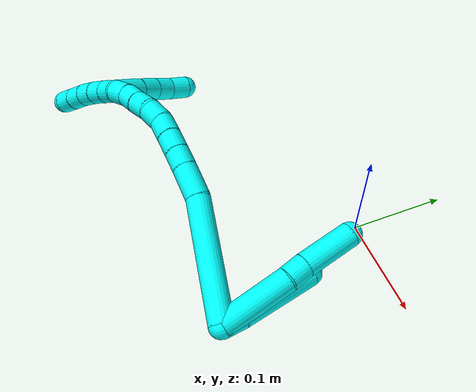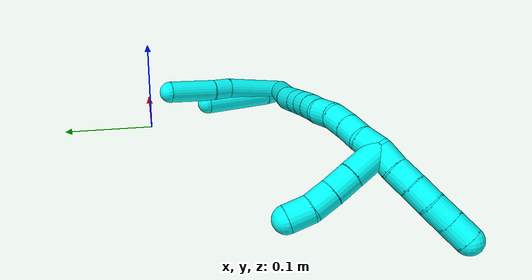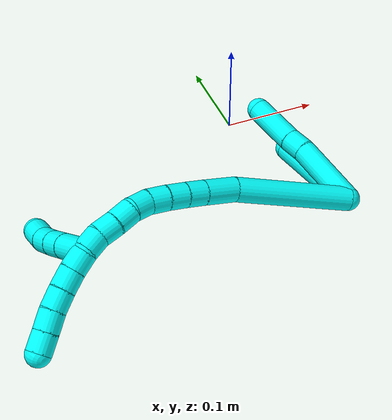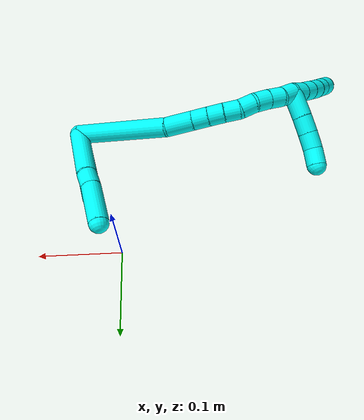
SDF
<sdf version="1.7">
 <world name="default">
  <model name="3">
   <static>0</static>
   <link name="3">
    <collision name="collision-cylinder-e_1_2_8">
     <pose>0.003814 0.009487 -0.035332 -2.87927 0.103867 -0.750698</pose>
     <geometry><cylinder><radius>0.0125</radius><length>0.073563</length></cylinder></geometry>
     <surface>
      <friction><ode><mu>1.16</mu><mu2>1.16</mu2><slip1>0</slip1><slip2>0</slip2></ode></friction>
      <contact><ode><kp>1e+06</kp><kd>1</kd><max_vel>0</max_vel><min_depth>0.001</min_depth></ode></contact>
     </surface>
    </collision>
    <visual name="visual-cylinder-e_1_2_8">
     <pose>0.003814 0.009487 -0.035332 -2.87927 0.103867 -0.750698</pose>
     <geometry><cylinder><radius>0.0125</radius><length>0.073563</length></cylinder></geometry>
     <material><ambient>0.003922 1 0.996078 1</ambient></material>
    </visual>
    <collision name="collision-cylinder-e_2_8_9">
     <pose>0.00738 0.020977 -0.081108 -2.95209 -0.023232 0.243261</pose>
     <geometry><cylinder><radius>0.0125</radius><length>0.021276</length></cylinder></geometry>
     <surface>
      <friction><ode><mu>1.16</mu><mu2>1.16</mu2><slip1>0</slip1><slip2>0</slip2></ode></friction>
      <contact><ode><kp>1e+06</kp><kd>1</kd><max_vel>0</max_vel><min_depth>0.001</min_depth></ode></contact>
     </surface>
    </collision>
    <visual name="visual-cylinder-e_2_8_9">
     <pose>0.00738 0.020977 -0.081108 -2.95209 -0.023232 0.243261</pose>
     <geometry><cylinder><radius>0.0125</radius><length>0.021276</length></cylinder></geometry>
     <material><ambient>0.003922 1 0.996078 1</ambient></material>
    </visual>
    <collision name="collision-cylinder-e_3_9_6">
     <pose>0.009113 0.0283 -0.118543 -2.94701 0.071872 -0.705863</pose>
     <geometry><cylinder><radius>0.0125</radius><length>0.055161</length></cylinder></geometry>
     <surface>
      <friction><ode><mu>1.16</mu><mu2>1.16</mu2><slip1>0</slip1><slip2>0</slip2></ode></friction>
      <contact><ode><kp>1e+06</kp><kd>1</kd><max_vel>0</max_vel><min_depth>0.001</min_depth></ode></contact>
     </surface>
    </collision>
    <visual name="visual-cylinder-e_3_9_6">
     <pose>0.009113 0.0283 -0.118543 -2.94701 0.071872 -0.705863</pose>
     <geometry><cylinder><radius>0.0125</radius><length>0.055161</length></cylinder></geometry>
     <material><ambient>0.003922 1 0.996078 1</ambient></material>
    </visual>
    <collision name="collision-cylinder-e_1_2_10">
     <pose>0.000668 -0.000415 -0.010537 3.10227 0.063253 2.02935</pose>
     <geometry><cylinder><radius>0.0125</radius><length>0.021132</length></cylinder></geometry>
     <surface>
      <friction><ode><mu>1.16</mu><mu2>1.16</mu2><slip1>0</slip1><slip2>0</slip2></ode></friction>
      <contact><ode><kp>1e+06</kp><kd>1</kd><max_vel>0</max_vel><min_depth>0.001</min_depth></ode></contact>
     </surface>
    </collision>
    <visual name="visual-cylinder-e_1_2_10">
     <pose>0.000668 -0.000415 -0.010537 3.10227 0.063253 2.02935</pose>
     <geometry><cylinder><radius>0.0125</radius><length>0.021132</length></cylinder></geometry>
     <material><ambient>0.003922 1 0.996078 1</ambient></material>
    </visual>
    <collision name="collision-cylinder-e_2_10_5">
     <pose>0.003659 0.002851 -0.060267 -3.04798 0.05894 -1.12344</pose>
     <geometry><cylinder><radius>0.0125</radius><length>0.078868</length></cylinder></geometry>
     <surface>
      <friction><ode><mu>1.16</mu><mu2>1.16</mu2><slip1>0</slip1><slip2>0</slip2></ode></friction>
      <contact><ode><kp>1e+06</kp><kd>1</kd><max_vel>0</max_vel><min_depth>0.001</min_depth></ode></contact>
     </surface>
    </collision>
    <visual name="visual-cylinder-e_2_10_5">
     <pose>0.003659 0.002851 -0.060267 -3.04798 0.05894 -1.12344</pose>
     <geometry><cylinder><radius>0.0125</radius><length>0.078868</length></cylinder></geometry>
     <material><ambient>0.003922 1 0.996078 1</ambient></material>
    </visual>
    <collision name="collision-cylinder-e_1_2_11">
     <pose>-0.04866 0.031436 -0.023036 -2.20321 -0.895494 1.51677</pose>
     <geometry><cylinder><radius>0.0125</radius><length>0.124686</length></cylinder></geometry>
     <surface>
      <friction><ode><mu>1.16</mu><mu2>1.16</mu2><slip1>0</slip1><slip2>0</slip2></ode></friction>
      <contact><ode><kp>1e+06</kp><kd>1</kd><max_vel>0</max_vel><min_depth>0.001</min_depth></ode></contact>
     </surface>
    </collision>
    <visual name="visual-cylinder-e_1_2_11">
     <pose>-0.04866 0.031436 -0.023036 -2.20321 -0.895494 1.51677</pose>
     <geometry><cylinder><radius>0.0125</radius><length>0.124686</length></cylinder></geometry>
     <material><ambient>0.003922 1 0.996078 1</ambient></material>
    </visual>
    <collision name="collision-cylinder-e_2_11_12">
     <pose>-0.112469 0.071041 -0.048984 -1.91316 -1.05084 1.37619</pose>
     <geometry><cylinder><radius>0.0125</radius><length>0.034914</length></cylinder></geometry>
     <surface>
      <friction><ode><mu>1.16</mu><mu2>1.16</mu2><slip1>0</slip1><slip2>0</slip2></ode></friction>
      <contact><ode><kp>1e+06</kp><kd>1</kd><max_vel>0</max_vel><min_depth>0.001</min_depth></ode></contact>
     </surface>
    </collision>
    <visual name="visual-cylinder-e_2_11_12">
     <pose>-0.112469 0.071041 -0.048984 -1.91316 -1.05084 1.37619</pose>
     <geometry><cylinder><radius>0.0125</radius><length>0.034914</length></cylinder></geometry>
     <material><ambient>0.003922 1 0.996078 1</ambient></material>
    </visual>
    <collision name="collision-cylinder-e_3_12_13">
     <pose>-0.136486 0.083863 -0.053423 -1.8879 -1.0663 1.36741</pose>
     <geometry><cylinder><radius>0.0125</radius><length>0.020259</length></cylinder></geometry>
     <surface>
      <friction><ode><mu>1.16</mu><mu2>1.16</mu2><slip1>0</slip1><slip2>0</slip2></ode></friction>
      <contact><ode><kp>1e+06</kp><kd>1</kd><max_vel>0</max_vel><min_depth>0.001</min_depth></ode></contact>
     </surface>
    </collision>
    <visual name="visual-cylinder-e_3_12_13">
     <pose>-0.136486 0.083863 -0.053423 -1.8879 -1.0663 1.36741</pose>
     <geometry><cylinder><radius>0.0125</radius><length>0.020259</length></cylinder></geometry>
     <material><ambient>0.003922 1 0.996078 1</ambient></material>
    </visual>
    <collision name="collision-cylinder-e_4_13_14">
     <pose>-0.154238 0.092865 -0.056456 -1.90424 -1.0927 1.41383</pose>
     <geometry><cylinder><radius>0.0125</radius><length>0.020013</length></cylinder></geometry>
     <surface>
      <friction><ode><mu>1.16</mu><mu2>1.16</mu2><slip1>0</slip1><slip2>0</slip2></ode></friction>
      <contact><ode><kp>1e+06</kp><kd>1</kd><max_vel>0</max_vel><min_depth>0.001</min_depth></ode></contact>
     </surface>
    </collision>
    <visual name="visual-cylinder-e_4_13_14">
     <pose>-0.154238 0.092865 -0.056456 -1.90424 -1.0927 1.41383</pose>
     <geometry><cylinder><radius>0.0125</radius><length>0.020013</length></cylinder></geometry>
     <material><ambient>0.003922 1 0.996078 1</ambient></material>
    </visual>
    <collision name="collision-cylinder-e_5_14_15">
     <pose>-0.172295 0.101006 -0.059452 -1.94515 -1.15295 1.52367</pose>
     <geometry><cylinder><radius>0.0125</radius><length>0.020071</length></cylinder></geometry>
     <surface>
      <friction><ode><mu>1.16</mu><mu2>1.16</mu2><slip1>0</slip1><slip2>0</slip2></ode></friction>
      <contact><ode><kp>1e+06</kp><kd>1</kd><max_vel>0</max_vel><min_depth>0.001</min_depth></ode></contact>
     </surface>
    </collision>
    <visual name="visual-cylinder-e_5_14_15">
     <pose>-0.172295 0.101006 -0.059452 -1.94515 -1.15295 1.52367</pose>
     <geometry><cylinder><radius>0.0125</radius><length>0.020071</length></cylinder></geometry>
     <material><ambient>0.003922 1 0.996078 1</ambient></material>
    </visual>
    <collision name="collision-cylinder-e_6_15_16">
     <pose>-0.190875 0.107976 -0.05969 -1.19589 -1.22241 0.890601</pose>
     <geometry><cylinder><radius>0.0125</radius><length>0.02002</length></cylinder></geometry>
     <surface>
      <friction><ode><mu>1.16</mu><mu2>1.16</mu2><slip1>0</slip1><slip2>0</slip2></ode></friction>
      <contact><ode><kp>1e+06</kp><kd>1</kd><max_vel>0</max_vel><min_depth>0.001</min_depth></ode></contact>
     </surface>
    </collision>
    <visual name="visual-cylinder-e_6_15_16">
     <pose>-0.190875 0.107976 -0.05969 -1.19589 -1.22241 0.890601</pose>
     <geometry><cylinder><radius>0.0125</radius><length>0.02002</length></cylinder></geometry>
     <material><ambient>0.003922 1 0.996078 1</ambient></material>
    </visual>
    <collision name="collision-cylinder-e_7_16_17">
     <pose>-0.210219 0.111488 -0.05726 -0.274394 -1.44812 0.242972</pose>
     <geometry><cylinder><radius>0.0125</radius><length>0.020022</length></cylinder></geometry>
     <surface>
      <friction><ode><mu>1.16</mu><mu2>1.16</mu2><slip1>0</slip1><slip2>0</slip2></ode></friction>
      <contact><ode><kp>1e+06</kp><kd>1</kd><max_vel>0</max_vel><min_depth>0.001</min_depth></ode></contact>
     </surface>
    </collision>
    <visual name="visual-cylinder-e_7_16_17">
     <pose>-0.210219 0.111488 -0.05726 -0.274394 -1.44812 0.242972</pose>
     <geometry><cylinder><radius>0.0125</radius><length>0.020022</length></cylinder></geometry>
     <material><ambient>0.003922 1 0.996078 1</ambient></material>
    </visual>
    <collision name="collision-cylinder-e_8_17_18">
     <pose>-0.23015 0.112165 -0.055744 -0.798733 -1.52261 0.764775</pose>
     <geometry><cylinder><radius>0.0125</radius><length>0.020013</length></cylinder></geometry>
     <surface>
      <friction><ode><mu>1.16</mu><mu2>1.16</mu2><slip1>0</slip1><slip2>0</slip2></ode></friction>
      <contact><ode><kp>1e+06</kp><kd>1</kd><max_vel>0</max_vel><min_depth>0.001</min_depth></ode></contact>
     </surface>
    </collision>
    <visual name="visual-cylinder-e_8_17_18">
     <pose>-0.23015 0.112165 -0.055744 -0.798733 -1.52261 0.764775</pose>
     <geometry><cylinder><radius>0.0125</radius><length>0.020013</length></cylinder></geometry>
     <material><ambient>0.003922 1 0.996078 1</ambient></material>
    </visual>
    <collision name="collision-cylinder-e_9_18_1">
     <pose>-0.249788 0.111846 -0.052838 0.253035 -1.30216 -0.193222</pose>
     <geometry><cylinder><radius>0.0125</radius><length>0.020004</length></cylinder></geometry>
     <surface>
      <friction><ode><mu>1.16</mu><mu2>1.16</mu2><slip1>0</slip1><slip2>0</slip2></ode></friction>
      <contact><ode><kp>1e+06</kp><kd>1</kd><max_vel>0</max_vel><min_depth>0.001</min_depth></ode></contact>
     </surface>
    </collision>
    <visual name="visual-cylinder-e_9_18_1">
     <pose>-0.249788 0.111846 -0.052838 0.253035 -1.30216 -0.193222</pose>
     <geometry><cylinder><radius>0.0125</radius><length>0.020004</length></cylinder></geometry>
     <material><ambient>0.003922 1 0.996078 1</ambient></material>
    </visual>
    <collision name="collision-cylinder-e_1_1_19">
     <pose>-0.268681 0.107803 -0.048528 1.0951 -1.18105 -0.776001</pose>
     <geometry><cylinder><radius>0.0125</radius><length>0.02</length></cylinder></geometry>
     <surface>
      <friction><ode><mu>1.16</mu><mu2>1.16</mu2><slip1>0</slip1><slip2>0</slip2></ode></friction>
      <contact><ode><kp>1e+06</kp><kd>1</kd><max_vel>0</max_vel><min_depth>0.001</min_depth></ode></contact>
     </surface>
    </collision>
    <visual name="visual-cylinder-e_1_1_19">
     <pose>-0.268681 0.107803 -0.048528 1.0951 -1.18105 -0.776001</pose>
     <geometry><cylinder><radius>0.0125</radius><length>0.02</length></cylinder></geometry>
     <material><ambient>0.003922 1 0.996078 1</ambient></material>
    </visual>
    <collision name="collision-cylinder-e_2_19_20">
     <pose>-0.286915 0.101121 -0.043892 0.851275 -1.11596 -0.551492</pose>
     <geometry><cylinder><radius>0.0125</radius><length>0.02</length></cylinder></geometry>
     <surface>
      <friction><ode><mu>1.16</mu><mu2>1.16</mu2><slip1>0</slip1><slip2>0</slip2></ode></friction>
      <contact><ode><kp>1e+06</kp><kd>1</kd><max_vel>0</max_vel><min_depth>0.001</min_depth></ode></contact>
     </surface>
    </collision>
    <visual name="visual-cylinder-e_2_19_20">
     <pose>-0.286915 0.101121 -0.043892 0.851275 -1.11596 -0.551492</pose>
     <geometry><cylinder><radius>0.0125</radius><length>0.02</length></cylinder></geometry>
     <material><ambient>0.003922 1 0.996078 1</ambient></material>
    </visual>
    <collision name="collision-cylinder-e_3_20_21">
     <pose>-0.304584 0.093969 -0.037876 0.889404 -1.05237 -0.540033</pose>
     <geometry><cylinder><radius>0.0125</radius><length>0.02</length></cylinder></geometry>
     <surface>
      <friction><ode><mu>1.16</mu><mu2>1.16</mu2><slip1>0</slip1><slip2>0</slip2></ode></friction>
      <contact><ode><kp>1e+06</kp><kd>1</kd><max_vel>0</max_vel><min_depth>0.001</min_depth></ode></contact>
     </surface>
    </collision>
    <visual name="visual-cylinder-e_3_20_21">
     <pose>-0.304584 0.093969 -0.037876 0.889404 -1.05237 -0.540033</pose>
     <geometry><cylinder><radius>0.0125</radius><length>0.02</length></cylinder></geometry>
     <material><ambient>0.003922 1 0.996078 1</ambient></material>
    </visual>
    <collision name="collision-cylinder-e_4_21_22">
     <pose>-0.32132 0.08564 -0.030866 0.855926 -0.935631 -0.453011</pose>
     <geometry><cylinder><radius>0.0125</radius><length>0.02</length></cylinder></geometry>
     <surface>
      <friction><ode><mu>1.16</mu><mu2>1.16</mu2><slip1>0</slip1><slip2>0</slip2></ode></friction>
      <contact><ode><kp>1e+06</kp><kd>1</kd><max_vel>0</max_vel><min_depth>0.001</min_depth></ode></contact>
     </surface>
    </collision>
    <visual name="visual-cylinder-e_4_21_22">
     <pose>-0.32132 0.08564 -0.030866 0.855926 -0.935631 -0.453011</pose>
     <geometry><cylinder><radius>0.0125</radius><length>0.02</length></cylinder></geometry>
     <material><ambient>0.003922 1 0.996078 1</ambient></material>
    </visual>
    <collision name="collision-cylinder-e_5_22_4">
     <pose>-0.337516 0.076725 -0.023239 0.870404 -0.952179 -0.470603</pose>
     <geometry><cylinder><radius>0.0125</radius><length>0.02</length></cylinder></geometry>
     <surface>
      <friction><ode><mu>1.16</mu><mu2>1.16</mu2><slip1>0</slip1><slip2>0</slip2></ode></friction>
      <contact><ode><kp>1e+06</kp><kd>1</kd><max_vel>0</max_vel><min_depth>0.001</min_depth></ode></contact>
     </surface>
    </collision>
    <visual name="visual-cylinder-e_5_22_4">
     <pose>-0.337516 0.076725 -0.023239 0.870404 -0.952179 -0.470603</pose>
     <geometry><cylinder><radius>0.0125</radius><length>0.02</length></cylinder></geometry>
     <material><ambient>0.003922 1 0.996078 1</ambient></material>
    </visual>
    <collision name="collision-cylinder-e_1_1_23">
     <pose>-0.262411 0.105543 -0.065844 2.7943 -0.177981 -0.941103</pose>
     <geometry><cylinder><radius>0.0125</radius><length>0.033663</length></cylinder></geometry>
     <surface>
      <friction><ode><mu>1.16</mu><mu2>1.16</mu2><slip1>0</slip1><slip2>0</slip2></ode></friction>
      <contact><ode><kp>1e+06</kp><kd>1</kd><max_vel>0</max_vel><min_depth>0.001</min_depth></ode></contact>
     </surface>
    </collision>
    <visual name="visual-cylinder-e_1_1_23">
     <pose>-0.262411 0.105543 -0.065844 2.7943 -0.177981 -0.941103</pose>
     <geometry><cylinder><radius>0.0125</radius><length>0.033663</length></cylinder></geometry>
     <material><ambient>0.003922 1 0.996078 1</ambient></material>
    </visual>
    <collision name="collision-cylinder-e_2_23_24">
     <pose>-0.267162 0.095822 -0.091688 2.76316 -0.158972 -0.788324</pose>
     <geometry><cylinder><radius>0.0125</radius><length>0.02238</length></cylinder></geometry>
     <surface>
      <friction><ode><mu>1.16</mu><mu2>1.16</mu2><slip1>0</slip1><slip2>0</slip2></ode></friction>
      <contact><ode><kp>1e+06</kp><kd>1</kd><max_vel>0</max_vel><min_depth>0.001</min_depth></ode></contact>
     </surface>
    </collision>
    <visual name="visual-cylinder-e_2_23_24">
     <pose>-0.267162 0.095822 -0.091688 2.76316 -0.158972 -0.788324</pose>
     <geometry><cylinder><radius>0.0125</radius><length>0.02238</length></cylinder></geometry>
     <material><ambient>0.003922 1 0.996078 1</ambient></material>
    </visual>
    <collision name="collision-cylinder-e_3_24_25">
     <pose>-0.270143 0.087912 -0.112033 2.77853 -0.111697 -0.591316</pose>
     <geometry><cylinder><radius>0.0125</radius><length>0.021697</length></cylinder></geometry>
     <surface>
      <friction><ode><mu>1.16</mu><mu2>1.16</mu2><slip1>0</slip1><slip2>0</slip2></ode></friction>
      <contact><ode><kp>1e+06</kp><kd>1</kd><max_vel>0</max_vel><min_depth>0.001</min_depth></ode></contact>
     </surface>
    </collision>
    <visual name="visual-cylinder-e_3_24_25">
     <pose>-0.270143 0.087912 -0.112033 2.77853 -0.111697 -0.591316</pose>
     <geometry><cylinder><radius>0.0125</radius><length>0.021697</length></cylinder></geometry>
     <material><ambient>0.003922 1 0.996078 1</ambient></material>
    </visual>
    <collision name="collision-cylinder-e_4_25_3">
     <pose>-0.270383 0.081634 -0.132925 2.9189 0.087192 0.743999</pose>
     <geometry><cylinder><radius>0.0125</radius><length>0.02226</length></cylinder></geometry>
     <surface>
      <friction><ode><mu>1.16</mu><mu2>1.16</mu2><slip1>0</slip1><slip2>0</slip2></ode></friction>
      <contact><ode><kp>1e+06</kp><kd>1</kd><max_vel>0</max_vel><min_depth>0.001</min_depth></ode></contact>
     </surface>
    </collision>
    <visual name="visual-cylinder-e_4_25_3">
     <pose>-0.270383 0.081634 -0.132925 2.9189 0.087192 0.743999</pose>
     <geometry><cylinder><radius>0.0125</radius><length>0.02226</length></cylinder></geometry>
     <material><ambient>0.003922 1 0.996078 1</ambient></material>
    </visual>
    <collision name="collision-sphere-3">
     <pose>-0.269414 0.079185 -0.143739 0 -0 0</pose>
     <geometry><sphere><radius>0.0125</radius></sphere></geometry>
     <surface>
      <friction><ode><mu>1.16</mu><mu2>1.16</mu2><slip1>0</slip1><slip2>0</slip2></ode></friction>
      <contact><ode><kp>1e+06</kp><kd>1</kd><max_vel>0</max_vel><min_depth>0.001</min_depth></ode></contact>
     </surface>
    </collision>
    <visual name="visual-sphere-3">
     <pose>-0.269414 0.079185 -0.143739 0 -0 0</pose>
     <geometry><sphere><radius>0.0125</radius></sphere></geometry>
     <material><ambient>0.003922 1 0.996078 1</ambient></material>
    </visual>
    <collision name="collision-sphere-25">
     <pose>-0.271352 0.084083 -0.122112 0 -0 0</pose>
     <geometry><sphere><radius>0.0125</radius></sphere></geometry>
     <surface>
      <friction><ode><mu>1.16</mu><mu2>1.16</mu2><slip1>0</slip1><slip2>0</slip2></ode></friction>
      <contact><ode><kp>1e+06</kp><kd>1</kd><max_vel>0</max_vel><min_depth>0.001</min_depth></ode></contact>
     </surface>
    </collision>
    <visual name="visual-sphere-25">
     <pose>-0.271352 0.084083 -0.122112 0 -0 0</pose>
     <geometry><sphere><radius>0.0125</radius></sphere></geometry>
     <material><ambient>0.003922 1 0.996078 1</ambient></material>
    </visual>
    <collision name="collision-sphere-24">
     <pose>-0.268934 0.09174 -0.101955 0 -0 0</pose>
     <geometry><sphere><radius>0.0125</radius></sphere></geometry>
     <surface>
      <friction><ode><mu>1.16</mu><mu2>1.16</mu2><slip1>0</slip1><slip2>0</slip2></ode></friction>
      <contact><ode><kp>1e+06</kp><kd>1</kd><max_vel>0</max_vel><min_depth>0.001</min_depth></ode></contact>
     </surface>
    </collision>
    <visual name="visual-sphere-24">
     <pose>-0.268934 0.09174 -0.101955 0 -0 0</pose>
     <geometry><sphere><radius>0.0125</radius></sphere></geometry>
     <material><ambient>0.003922 1 0.996078 1</ambient></material>
    </visual>
    <collision name="collision-sphere-23">
     <pose>-0.265391 0.099905 -0.081421 0 -0 0</pose>
     <geometry><sphere><radius>0.0125</radius></sphere></geometry>
     <surface>
      <friction><ode><mu>1.16</mu><mu2>1.16</mu2><slip1>0</slip1><slip2>0</slip2></ode></friction>
      <contact><ode><kp>1e+06</kp><kd>1</kd><max_vel>0</max_vel><min_depth>0.001</min_depth></ode></contact>
     </surface>
    </collision>
    <visual name="visual-sphere-23">
     <pose>-0.265391 0.099905 -0.081421 0 -0 0</pose>
     <geometry><sphere><radius>0.0125</radius></sphere></geometry>
     <material><ambient>0.003922 1 0.996078 1</ambient></material>
    </visual>
    <collision name="collision-sphere-4">
     <pose>-0.345663 0.072291 -0.019501 0 -0 0</pose>
     <geometry><sphere><radius>0.0125</radius></sphere></geometry>
     <surface>
      <friction><ode><mu>1.16</mu><mu2>1.16</mu2><slip1>0</slip1><slip2>0</slip2></ode></friction>
      <contact><ode><kp>1e+06</kp><kd>1</kd><max_vel>0</max_vel><min_depth>0.001</min_depth></ode></contact>
     </surface>
    </collision>
    <visual name="visual-sphere-4">
     <pose>-0.345663 0.072291 -0.019501 0 -0 0</pose>
     <geometry><sphere><radius>0.0125</radius></sphere></geometry>
     <material><ambient>0.003922 1 0.996078 1</ambient></material>
    </visual>
    <collision name="collision-sphere-22">
     <pose>-0.329369 0.081159 -0.026977 0 -0 0</pose>
     <geometry><sphere><radius>0.0125</radius></sphere></geometry>
     <surface>
      <friction><ode><mu>1.16</mu><mu2>1.16</mu2><slip1>0</slip1><slip2>0</slip2></ode></friction>
      <contact><ode><kp>1e+06</kp><kd>1</kd><max_vel>0</max_vel><min_depth>0.001</min_depth></ode></contact>
     </surface>
    </collision>
    <visual name="visual-sphere-22">
     <pose>-0.329369 0.081159 -0.026977 0 -0 0</pose>
     <geometry><sphere><radius>0.0125</radius></sphere></geometry>
     <material><ambient>0.003922 1 0.996078 1</ambient></material>
    </visual>
    <collision name="collision-sphere-21">
     <pose>-0.31327 0.09012 -0.034755 0 -0 0</pose>
     <geometry><sphere><radius>0.0125</radius></sphere></geometry>
     <surface>
      <friction><ode><mu>1.16</mu><mu2>1.16</mu2><slip1>0</slip1><slip2>0</slip2></ode></friction>
      <contact><ode><kp>1e+06</kp><kd>1</kd><max_vel>0</max_vel><min_depth>0.001</min_depth></ode></contact>
     </surface>
    </collision>
    <visual name="visual-sphere-21">
     <pose>-0.31327 0.09012 -0.034755 0 -0 0</pose>
     <geometry><sphere><radius>0.0125</radius></sphere></geometry>
     <material><ambient>0.003922 1 0.996078 1</ambient></material>
    </visual>
    <collision name="collision-sphere-20">
     <pose>-0.295898 0.097817 -0.040997 0 -0 0</pose>
     <geometry><sphere><radius>0.0125</radius></sphere></geometry>
     <surface>
      <friction><ode><mu>1.16</mu><mu2>1.16</mu2><slip1>0</slip1><slip2>0</slip2></ode></friction>
      <contact><ode><kp>1e+06</kp><kd>1</kd><max_vel>0</max_vel><min_depth>0.001</min_depth></ode></contact>
     </surface>
    </collision>
    <visual name="visual-sphere-20">
     <pose>-0.295898 0.097817 -0.040997 0 -0 0</pose>
     <geometry><sphere><radius>0.0125</radius></sphere></geometry>
     <material><ambient>0.003922 1 0.996078 1</ambient></material>
    </visual>
    <collision name="collision-sphere-5">
     <pose>0.005982 0.00653 -0.09946 0 -0 0</pose>
     <geometry><sphere><radius>0.0125</radius></sphere></geometry>
     <surface>
      <friction><ode><mu>1.16</mu><mu2>1.16</mu2><slip1>0</slip1><slip2>0</slip2></ode></friction>
      <contact><ode><kp>1e+06</kp><kd>1</kd><max_vel>0</max_vel><min_depth>0.001</min_depth></ode></contact>
     </surface>
    </collision>
    <visual name="visual-sphere-5">
     <pose>0.005982 0.00653 -0.09946 0 -0 0</pose>
     <geometry><sphere><radius>0.0125</radius></sphere></geometry>
     <material><ambient>0.003922 1 0.996078 1</ambient></material>
    </visual>
    <collision name="collision-sphere-10">
     <pose>0.001336 -0.000829 -0.021073 0 -0 0</pose>
     <geometry><sphere><radius>0.0125</radius></sphere></geometry>
     <surface>
      <friction><ode><mu>1.16</mu><mu2>1.16</mu2><slip1>0</slip1><slip2>0</slip2></ode></friction>
      <contact><ode><kp>1e+06</kp><kd>1</kd><max_vel>0</max_vel><min_depth>0.001</min_depth></ode></contact>
     </surface>
    </collision>
    <visual name="visual-sphere-10">
     <pose>0.001336 -0.000829 -0.021073 0 -0 0</pose>
     <geometry><sphere><radius>0.0125</radius></sphere></geometry>
     <material><ambient>0.003922 1 0.996078 1</ambient></material>
    </visual>
    <collision name="collision-sphere-6">
     <pose>0.011094 0.033619 -0.145533 0 -0 0</pose>
     <geometry><sphere><radius>0.0125</radius></sphere></geometry>
     <surface>
      <friction><ode><mu>1.16</mu><mu2>1.16</mu2><slip1>0</slip1><slip2>0</slip2></ode></friction>
      <contact><ode><kp>1e+06</kp><kd>1</kd><max_vel>0</max_vel><min_depth>0.001</min_depth></ode></contact>
     </surface>
    </collision>
    <visual name="visual-sphere-6">
     <pose>0.011094 0.033619 -0.145533 0 -0 0</pose>
     <geometry><sphere><radius>0.0125</radius></sphere></geometry>
     <material><ambient>0.003922 1 0.996078 1</ambient></material>
    </visual>
    <collision name="collision-sphere-9">
     <pose>0.007133 0.022981 -0.091553 0 -0 0</pose>
     <geometry><sphere><radius>0.0125</radius></sphere></geometry>
     <surface>
      <friction><ode><mu>1.16</mu><mu2>1.16</mu2><slip1>0</slip1><slip2>0</slip2></ode></friction>
      <contact><ode><kp>1e+06</kp><kd>1</kd><max_vel>0</max_vel><min_depth>0.001</min_depth></ode></contact>
     </surface>
    </collision>
    <visual name="visual-sphere-9">
     <pose>0.007133 0.022981 -0.091553 0 -0 0</pose>
     <geometry><sphere><radius>0.0125</radius></sphere></geometry>
     <material><ambient>0.003922 1 0.996078 1</ambient></material>
    </visual>
    <collision name="collision-sphere-2">
     <geometry><sphere><radius>0.0125</radius></sphere></geometry>
     <surface>
      <friction><ode><mu>1.16</mu><mu2>1.16</mu2><slip1>0</slip1><slip2>0</slip2></ode></friction>
      <contact><ode><kp>1e+06</kp><kd>1</kd><max_vel>0</max_vel><min_depth>0.001</min_depth></ode></contact>
     </surface>
    </collision>
    <visual name="visual-sphere-2">
     <geometry><sphere><radius>0.0125</radius></sphere></geometry>
     <material><ambient>0.003922 1 0.996078 1</ambient></material>
    </visual>
    <collision name="collision-sphere-19">
     <pose>-0.277931 0.104426 -0.046788 0 -0 0</pose>
     <geometry><sphere><radius>0.0125</radius></sphere></geometry>
     <surface>
      <friction><ode><mu>1.16</mu><mu2>1.16</mu2><slip1>0</slip1><slip2>0</slip2></ode></friction>
      <contact><ode><kp>1e+06</kp><kd>1</kd><max_vel>0</max_vel><min_depth>0.001</min_depth></ode></contact>
     </surface>
    </collision>
    <visual name="visual-sphere-19">
     <pose>-0.277931 0.104426 -0.046788 0 -0 0</pose>
     <geometry><sphere><radius>0.0125</radius></sphere></geometry>
     <material><ambient>0.003922 1 0.996078 1</ambient></material>
    </visual>
    <collision name="collision-sphere-8">
     <pose>0.007627 0.018974 -0.070663 0 -0 0</pose>
     <geometry><sphere><radius>0.0125</radius></sphere></geometry>
     <surface>
      <friction><ode><mu>1.16</mu><mu2>1.16</mu2><slip1>0</slip1><slip2>0</slip2></ode></friction>
      <contact><ode><kp>1e+06</kp><kd>1</kd><max_vel>0</max_vel><min_depth>0.001</min_depth></ode></contact>
     </surface>
    </collision>
    <visual name="visual-sphere-8">
     <pose>0.007627 0.018974 -0.070663 0 -0 0</pose>
     <geometry><sphere><radius>0.0125</radius></sphere></geometry>
     <material><ambient>0.003922 1 0.996078 1</ambient></material>
    </visual>
    <collision name="collision-sphere-11">
     <pose>-0.097319 0.062871 -0.046073 0 -0 0</pose>
     <geometry><sphere><radius>0.0125</radius></sphere></geometry>
     <surface>
      <friction><ode><mu>1.16</mu><mu2>1.16</mu2><slip1>0</slip1><slip2>0</slip2></ode></friction>
      <contact><ode><kp>1e+06</kp><kd>1</kd><max_vel>0</max_vel><min_depth>0.001</min_depth></ode></contact>
     </surface>
    </collision>
    <visual name="visual-sphere-11">
     <pose>-0.097319 0.062871 -0.046073 0 -0 0</pose>
     <geometry><sphere><radius>0.0125</radius></sphere></geometry>
     <material><ambient>0.003922 1 0.996078 1</ambient></material>
    </visual>
    <collision name="collision-sphere-12">
     <pose>-0.127619 0.079211 -0.051896 0 -0 0</pose>
     <geometry><sphere><radius>0.0125</radius></sphere></geometry>
     <surface>
      <friction><ode><mu>1.16</mu><mu2>1.16</mu2><slip1>0</slip1><slip2>0</slip2></ode></friction>
      <contact><ode><kp>1e+06</kp><kd>1</kd><max_vel>0</max_vel><min_depth>0.001</min_depth></ode></contact>
     </surface>
    </collision>
    <visual name="visual-sphere-12">
     <pose>-0.127619 0.079211 -0.051896 0 -0 0</pose>
     <geometry><sphere><radius>0.0125</radius></sphere></geometry>
     <material><ambient>0.003922 1 0.996078 1</ambient></material>
    </visual>
    <collision name="collision-sphere-13">
     <pose>-0.145354 0.088515 -0.05495 0 -0 0</pose>
     <geometry><sphere><radius>0.0125</radius></sphere></geometry>
     <surface>
      <friction><ode><mu>1.16</mu><mu2>1.16</mu2><slip1>0</slip1><slip2>0</slip2></ode></friction>
      <contact><ode><kp>1e+06</kp><kd>1</kd><max_vel>0</max_vel><min_depth>0.001</min_depth></ode></contact>
     </surface>
    </collision>
    <visual name="visual-sphere-13">
     <pose>-0.145354 0.088515 -0.05495 0 -0 0</pose>
     <geometry><sphere><radius>0.0125</radius></sphere></geometry>
     <material><ambient>0.003922 1 0.996078 1</ambient></material>
    </visual>
    <collision name="collision-sphere-14">
     <pose>-0.163123 0.097215 -0.057963 0 -0 0</pose>
     <geometry><sphere><radius>0.0125</radius></sphere></geometry>
     <surface>
      <friction><ode><mu>1.16</mu><mu2>1.16</mu2><slip1>0</slip1><slip2>0</slip2></ode></friction>
      <contact><ode><kp>1e+06</kp><kd>1</kd><max_vel>0</max_vel><min_depth>0.001</min_depth></ode></contact>
     </surface>
    </collision>
    <visual name="visual-sphere-14">
     <pose>-0.163123 0.097215 -0.057963 0 -0 0</pose>
     <geometry><sphere><radius>0.0125</radius></sphere></geometry>
     <material><ambient>0.003922 1 0.996078 1</ambient></material>
    </visual>
    <collision name="collision-sphere-15">
     <pose>-0.181467 0.104796 -0.060942 0 -0 0</pose>
     <geometry><sphere><radius>0.0125</radius></sphere></geometry>
     <surface>
      <friction><ode><mu>1.16</mu><mu2>1.16</mu2><slip1>0</slip1><slip2>0</slip2></ode></friction>
      <contact><ode><kp>1e+06</kp><kd>1</kd><max_vel>0</max_vel><min_depth>0.001</min_depth></ode></contact>
     </surface>
    </collision>
    <visual name="visual-sphere-15">
     <pose>-0.181467 0.104796 -0.060942 0 -0 0</pose>
     <geometry><sphere><radius>0.0125</radius></sphere></geometry>
     <material><ambient>0.003922 1 0.996078 1</ambient></material>
    </visual>
    <collision name="collision-sphere-16">
     <pose>-0.200284 0.111156 -0.058439 0 -0 0</pose>
     <geometry><sphere><radius>0.0125</radius></sphere></geometry>
     <surface>
      <friction><ode><mu>1.16</mu><mu2>1.16</mu2><slip1>0</slip1><slip2>0</slip2></ode></friction>
      <contact><ode><kp>1e+06</kp><kd>1</kd><max_vel>0</max_vel><min_depth>0.001</min_depth></ode></contact>
     </surface>
    </collision>
    <visual name="visual-sphere-16">
     <pose>-0.200284 0.111156 -0.058439 0 -0 0</pose>
     <geometry><sphere><radius>0.0125</radius></sphere></geometry>
     <material><ambient>0.003922 1 0.996078 1</ambient></material>
    </visual>
    <collision name="collision-sphere-17">
     <pose>-0.220155 0.11182 -0.056081 0 -0 0</pose>
     <geometry><sphere><radius>0.0125</radius></sphere></geometry>
     <surface>
      <friction><ode><mu>1.16</mu><mu2>1.16</mu2><slip1>0</slip1><slip2>0</slip2></ode></friction>
      <contact><ode><kp>1e+06</kp><kd>1</kd><max_vel>0</max_vel><min_depth>0.001</min_depth></ode></contact>
     </surface>
    </collision>
    <visual name="visual-sphere-17">
     <pose>-0.220155 0.11182 -0.056081 0 -0 0</pose>
     <geometry><sphere><radius>0.0125</radius></sphere></geometry>
     <material><ambient>0.003922 1 0.996078 1</ambient></material>
    </visual>
    <collision name="collision-sphere-18">
     <pose>-0.240145 0.11251 -0.055408 0 -0 0</pose>
     <geometry><sphere><radius>0.0125</radius></sphere></geometry>
     <surface>
      <friction><ode><mu>1.16</mu><mu2>1.16</mu2><slip1>0</slip1><slip2>0</slip2></ode></friction>
      <contact><ode><kp>1e+06</kp><kd>1</kd><max_vel>0</max_vel><min_depth>0.001</min_depth></ode></contact>
     </surface>
    </collision>
    <visual name="visual-sphere-18">
     <pose>-0.240145 0.11251 -0.055408 0 -0 0</pose>
     <geometry><sphere><radius>0.0125</radius></sphere></geometry>
     <material><ambient>0.003922 1 0.996078 1</ambient></material>
    </visual>
    <collision name="collision-sphere-1">
     <pose>-0.259431 0.111181 -0.050268 0 -0 0</pose>
     <geometry><sphere><radius>0.0125</radius></sphere></geometry>
     <surface>
      <friction><ode><mu>1.16</mu><mu2>1.16</mu2><slip1>0</slip1><slip2>0</slip2></ode></friction>
      <contact><ode><kp>1e+06</kp><kd>1</kd><max_vel>0</max_vel><min_depth>0.001</min_depth></ode></contact>
     </surface>
    </collision>
    <visual name="visual-sphere-1">
     <pose>-0.259431 0.111181 -0.050268 0 -0 0</pose>
     <geometry><sphere><radius>0.0125</radius></sphere></geometry>
     <material><ambient>0.003922 1 0.996078 1</ambient></material>
    </visual>
    <inertial>
     <pose>-0.123689 0.056679 -0.055583 0 -0 0</pose>
     <mass>0.75</mass>
     <inertia><ixx>7.8e-05</ixx><ixy>0</ixy><ixz>0</ixz><iyy>9.2e-05</iyy><iyz>0</iyz><izz>1.6e-05</izz></inertia>
    </inertial>
   </link>
   <pose>0.058613 -0.169008 0.014819 1.45793 -0.210015 0.284724</pose>
  </model>
 </world>
</sdf>
